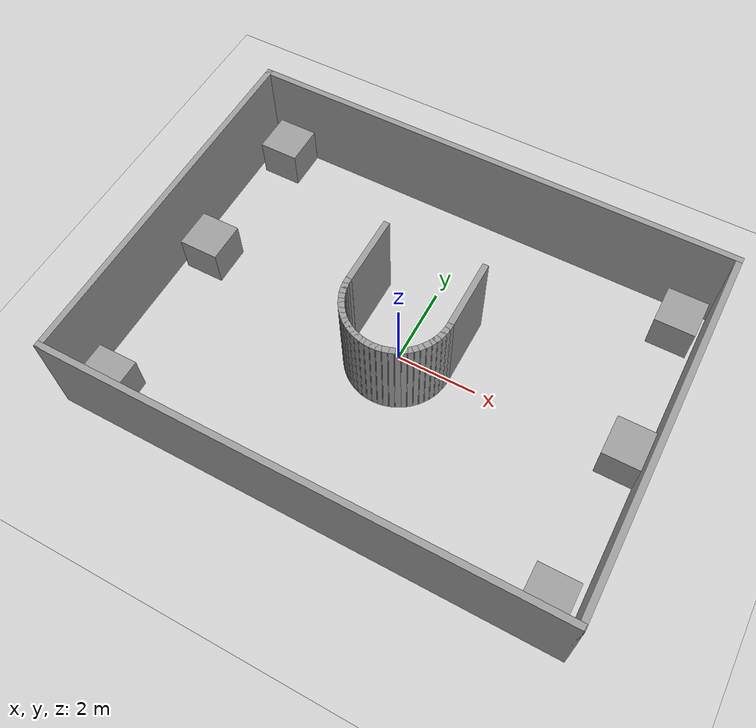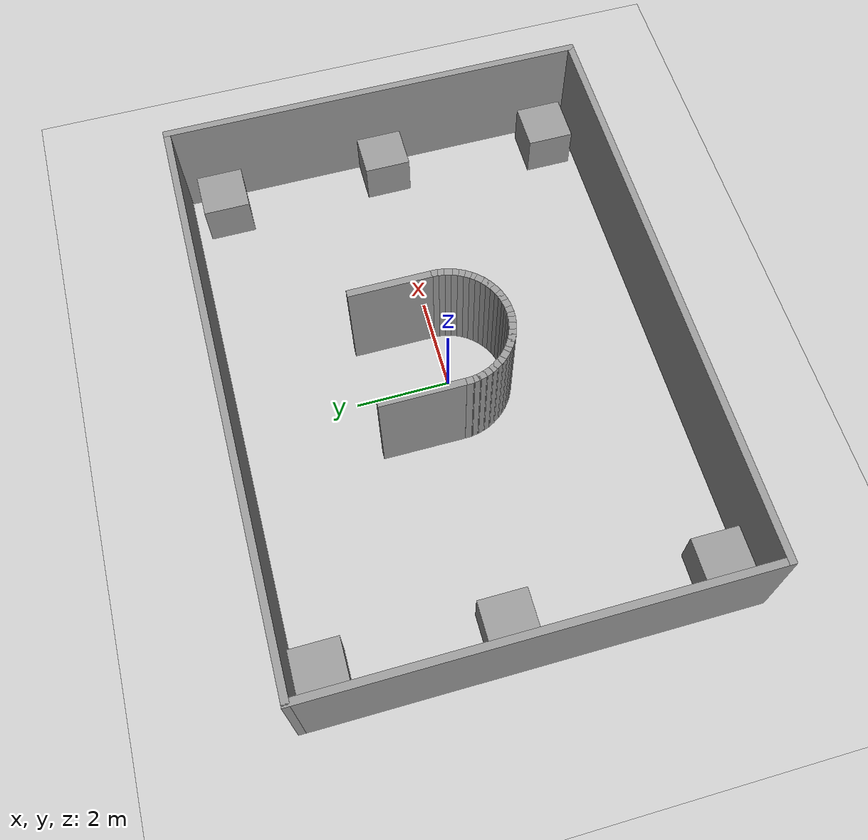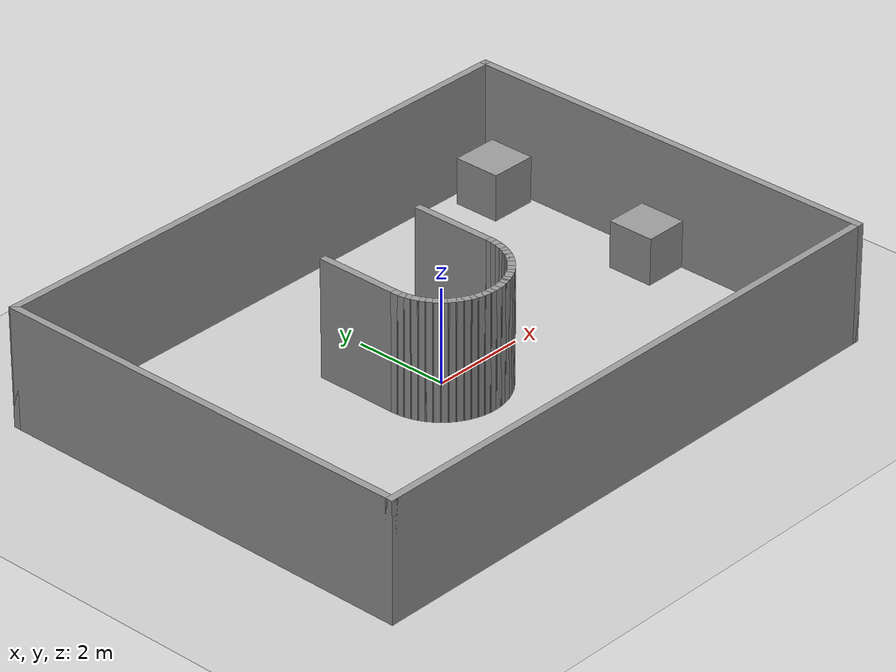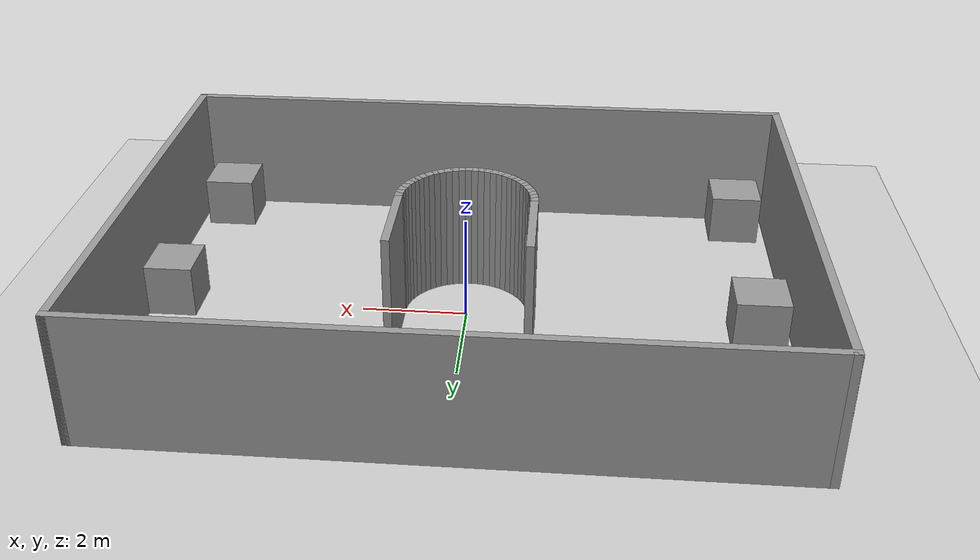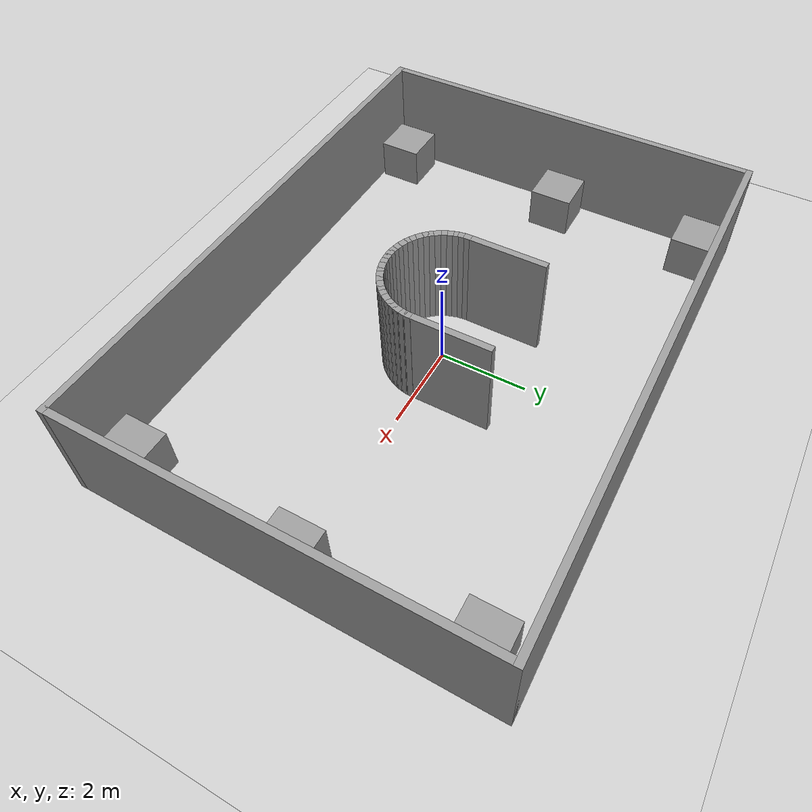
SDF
<sdf version="1.7">
 <world name="default">
  <light name="sun" type="directional">
   <pose>0 0 10 0 -0 0</pose>
   <diffuse>0.8 0.8 0.8 1</diffuse>
   <specular>0.2 0.2 0.2 1</specular>
   <attenuation>
    <range>1000</range>
    <constant>0.9</constant>
    <linear>0.01</linear>
    <quadratic>0.001</quadratic>
   </attenuation>
   <direction>-0.5 0.1 -0.9</direction>
   <spot><inner_angle>0</inner_angle><outer_angle>0</outer_angle><falloff>0</falloff></spot>
  </light>
  <model name="ground_plane">
   <static>1</static>
   <link name="link">
    <collision name="collision">
     <geometry><plane><normal>0 0 1</normal><size>100 100</size></plane></geometry>
     <surface>
      <contact><collide_bitmask>65535</collide_bitmask></contact>
      <friction><ode><mu>100</mu><mu2>50</mu2></ode></friction>
     </surface>
    </collision>
    <visual name="visual">
     <cast_shadows>0</cast_shadows>
     <geometry><plane><normal>0 0 1</normal><size>100 100</size></plane></geometry>
     <material>
      <script><uri>file://media/materials/scripts/gazebo.material</uri><name>Gazebo/Grey</name></script>
     </material>
    </visual>
   </link>
  </model>
  <gravity>0 0 -9.8</gravity>
  <magnetic_field>6e-06 2.3e-05 -4.2e-05</magnetic_field>
  <atmosphere type="adiabatic"/>
  <physics type="ode">
   <max_step_size>0.001</max_step_size>
   <real_time_factor>1</real_time_factor>
   <real_time_update_rate>1000</real_time_update_rate>
  </physics>
  <scene><ambient>0.4 0.4 0.4 1</ambient><background>0.7 0.7 0.7 1</background><shadows>1</shadows></scene>
  <spherical_coordinates>
   <surface_model>EARTH_WGS84</surface_model>
   <latitude_deg>0</latitude_deg>
   <longitude_deg>0</longitude_deg>
   <elevation>0</elevation>
   <heading_deg>0</heading_deg>
  </spherical_coordinates>
  <model name="map_extra">
   <link name="Wall_bottom">
    <collision name="Wall_bottom_Collision">
     <geometry><box><size>12.5 0.15 2.5</size></box></geometry>
     <pose>0 0 1.25 0 -0 0</pose>
    </collision>
    <visual name="Wall_bottom_Visual">
     <pose>0 0 1.25 0 -0 0</pose>
     <geometry><box><size>12.5 0.15 2.5</size></box></geometry>
     <material>
      <script><uri>file://media/materials/scripts/gazebo.material</uri><name>Gazebo/Grey</name></script>
      <ambient>1 1 1 1</ambient>
     </material>
     <meta><layer>0</layer></meta>
    </visual>
    <pose>0.000000 -4.550000 0 0 -0 0.000000</pose>
   </link>
   <link name="Wall_top">
    <collision name="Wall_top_Collision">
     <geometry><box><size>12.5 0.15 2.5</size></box></geometry>
     <pose>0 0 1.25 0 -0 0</pose>
    </collision>
    <visual name="Wall_top_Visual">
     <pose>0 0 1.25 0 -0 0</pose>
     <geometry><box><size>12.5 0.15 2.5</size></box></geometry>
     <material>
      <script><uri>file://media/materials/scripts/gazebo.material</uri><name>Gazebo/Grey</name></script>
      <ambient>1 1 1 1</ambient>
     </material>
     <meta><layer>0</layer></meta>
    </visual>
    <pose>0.000000 4.550000 0 0 -0 0.000000</pose>
   </link>
   <link name="Wall_left">
    <collision name="Wall_left_Collision">
     <geometry><box><size>9.25 0.15 2.5</size></box></geometry>
     <pose>0 0 1.25 0 -0 0</pose>
    </collision>
    <visual name="Wall_left_Visual">
     <pose>0 0 1.25 0 -0 0</pose>
     <geometry><box><size>9.25 0.15 2.5</size></box></geometry>
     <material>
      <script><uri>file://media/materials/scripts/gazebo.material</uri><name>Gazebo/Grey</name></script>
      <ambient>1 1 1 1</ambient>
     </material>
     <meta><layer>0</layer></meta>
    </visual>
    <pose>-6.175000 0.000000 0 0 -0 1.570796</pose>
   </link>
   <link name="Wall_right">
    <collision name="Wall_right_Collision">
     <geometry><box><size>9.25 0.15 2.5</size></box></geometry>
     <pose>0 0 1.25 0 -0 0</pose>
    </collision>
    <visual name="Wall_right_Visual">
     <pose>0 0 1.25 0 -0 0</pose>
     <geometry><box><size>9.25 0.15 2.5</size></box></geometry>
     <material>
      <script><uri>file://media/materials/scripts/gazebo.material</uri><name>Gazebo/Grey</name></script>
      <ambient>1 1 1 1</ambient>
     </material>
     <meta><layer>0</layer></meta>
    </visual>
    <pose>6.175000 0.000000 0 0 -0 1.570796</pose>
   </link>
   <static>1</static>
  </model>
  <model name="U_curved">
   <link name="Arc_00">
    <collision name="Arc_00_Collision">
     <geometry><box><size>0.16355 0.15 2.5</size></box></geometry>
     <pose>0 0 1.25 0 -0 0</pose>
    </collision>
    <visual name="Arc_00_Visual">
     <pose>0 0 1.25 0 -0 0</pose>
     <geometry><box><size>0.16355 0.15 2.5</size></box></geometry>
     <material>
      <script><uri>file://media/materials/scripts/gazebo.material</uri><name>Gazebo/Grey</name></script>
      <ambient>1 1 1 1</ambient>
     </material>
     <meta><layer>0</layer></meta>
    </visual>
    <pose>-1.248287 -0.065420 0 0 -0 4.764749</pose>
   </link>
   <link name="Arc_01">
    <collision name="Arc_01_Collision">
     <geometry><box><size>0.16355 0.15 2.5</size></box></geometry>
     <pose>0 0 1.25 0 -0 0</pose>
    </collision>
    <visual name="Arc_01_Visual">
     <pose>0 0 1.25 0 -0 0</pose>
     <geometry><box><size>0.16355 0.15 2.5</size></box></geometry>
     <material>
      <script><uri>file://media/materials/scripts/gazebo.material</uri><name>Gazebo/Grey</name></script>
      <ambient>1 1 1 1</ambient>
     </material>
     <meta><layer>0</layer></meta>
    </visual>
    <pose>-1.234610 -0.195543 0 0 -0 4.869469</pose>
   </link>
   <link name="Arc_02">
    <collision name="Arc_02_Collision">
     <geometry><box><size>0.16355 0.15 2.5</size></box></geometry>
     <pose>0 0 1.25 0 -0 0</pose>
    </collision>
    <visual name="Arc_02_Visual">
     <pose>0 0 1.25 0 -0 0</pose>
     <geometry><box><size>0.16355 0.15 2.5</size></box></geometry>
     <material>
      <script><uri>file://media/materials/scripts/gazebo.material</uri><name>Gazebo/Grey</name></script>
      <ambient>1 1 1 1</ambient>
     </material>
     <meta><layer>0</layer></meta>
    </visual>
    <pose>-1.207407 -0.323524 0 0 -0 4.974188</pose>
   </link>
   <link name="Arc_03">
    <collision name="Arc_03_Collision">
     <geometry><box><size>0.16355 0.15 2.5</size></box></geometry>
     <pose>0 0 1.25 0 -0 0</pose>
    </collision>
    <visual name="Arc_03_Visual">
     <pose>0 0 1.25 0 -0 0</pose>
     <geometry><box><size>0.16355 0.15 2.5</size></box></geometry>
     <material>
      <script><uri>file://media/materials/scripts/gazebo.material</uri><name>Gazebo/Grey</name></script>
      <ambient>1 1 1 1</ambient>
     </material>
     <meta><layer>0</layer></meta>
    </visual>
    <pose>-1.166976 -0.447960 0 0 -0 5.078908</pose>
   </link>
   <link name="Arc_04">
    <collision name="Arc_04_Collision">
     <geometry><box><size>0.16355 0.15 2.5</size></box></geometry>
     <pose>0 0 1.25 0 -0 0</pose>
    </collision>
    <visual name="Arc_04_Visual">
     <pose>0 0 1.25 0 -0 0</pose>
     <geometry><box><size>0.16355 0.15 2.5</size></box></geometry>
     <material>
      <script><uri>file://media/materials/scripts/gazebo.material</uri><name>Gazebo/Grey</name></script>
      <ambient>1 1 1 1</ambient>
     </material>
     <meta><layer>0</layer></meta>
    </visual>
    <pose>-1.113758 -0.567488 0 0 -0 5.183628</pose>
   </link>
   <link name="Arc_05">
    <collision name="Arc_05_Collision">
     <geometry><box><size>0.16355 0.15 2.5</size></box></geometry>
     <pose>0 0 1.25 0 -0 0</pose>
    </collision>
    <visual name="Arc_05_Visual">
     <pose>0 0 1.25 0 -0 0</pose>
     <geometry><box><size>0.16355 0.15 2.5</size></box></geometry>
     <material>
      <script><uri>file://media/materials/scripts/gazebo.material</uri><name>Gazebo/Grey</name></script>
      <ambient>1 1 1 1</ambient>
     </material>
     <meta><layer>0</layer></meta>
    </visual>
    <pose>-1.048338 -0.680799 0 0 -0 5.288348</pose>
   </link>
   <link name="Arc_06">
    <collision name="Arc_06_Collision">
     <geometry><box><size>0.16355 0.15 2.5</size></box></geometry>
     <pose>0 0 1.25 0 -0 0</pose>
    </collision>
    <visual name="Arc_06_Visual">
     <pose>0 0 1.25 0 -0 0</pose>
     <geometry><box><size>0.16355 0.15 2.5</size></box></geometry>
     <material>
      <script><uri>file://media/materials/scripts/gazebo.material</uri><name>Gazebo/Grey</name></script>
      <ambient>1 1 1 1</ambient>
     </material>
     <meta><layer>0</layer></meta>
    </visual>
    <pose>-0.971432 -0.786650 0 0 -0 5.393067</pose>
   </link>
   <link name="Arc_07">
    <collision name="Arc_07_Collision">
     <geometry><box><size>0.16355 0.15 2.5</size></box></geometry>
     <pose>0 0 1.25 0 -0 0</pose>
    </collision>
    <visual name="Arc_07_Visual">
     <pose>0 0 1.25 0 -0 0</pose>
     <geometry><box><size>0.16355 0.15 2.5</size></box></geometry>
     <material>
      <script><uri>file://media/materials/scripts/gazebo.material</uri><name>Gazebo/Grey</name></script>
      <ambient>1 1 1 1</ambient>
     </material>
     <meta><layer>0</layer></meta>
    </visual>
    <pose>-0.883883 -0.883883 0 0 -0 5.497787</pose>
   </link>
   <link name="Arc_08">
    <collision name="Arc_08_Collision">
     <geometry><box><size>0.16355 0.15 2.5</size></box></geometry>
     <pose>0 0 1.25 0 -0 0</pose>
    </collision>
    <visual name="Arc_08_Visual">
     <pose>0 0 1.25 0 -0 0</pose>
     <geometry><box><size>0.16355 0.15 2.5</size></box></geometry>
     <material>
      <script><uri>file://media/materials/scripts/gazebo.material</uri><name>Gazebo/Grey</name></script>
      <ambient>1 1 1 1</ambient>
     </material>
     <meta><layer>0</layer></meta>
    </visual>
    <pose>-0.786650 -0.971432 0 0 -0 5.602507</pose>
   </link>
   <link name="Arc_09">
    <collision name="Arc_09_Collision">
     <geometry><box><size>0.16355 0.15 2.5</size></box></geometry>
     <pose>0 0 1.25 0 -0 0</pose>
    </collision>
    <visual name="Arc_09_Visual">
     <pose>0 0 1.25 0 -0 0</pose>
     <geometry><box><size>0.16355 0.15 2.5</size></box></geometry>
     <material>
      <script><uri>file://media/materials/scripts/gazebo.material</uri><name>Gazebo/Grey</name></script>
      <ambient>1 1 1 1</ambient>
     </material>
     <meta><layer>0</layer></meta>
    </visual>
    <pose>-0.680799 -1.048338 0 0 -0 5.707227</pose>
   </link>
   <link name="Arc_10">
    <collision name="Arc_10_Collision">
     <geometry><box><size>0.16355 0.15 2.5</size></box></geometry>
     <pose>0 0 1.25 0 -0 0</pose>
    </collision>
    <visual name="Arc_10_Visual">
     <pose>0 0 1.25 0 -0 0</pose>
     <geometry><box><size>0.16355 0.15 2.5</size></box></geometry>
     <material>
      <script><uri>file://media/materials/scripts/gazebo.material</uri><name>Gazebo/Grey</name></script>
      <ambient>1 1 1 1</ambient>
     </material>
     <meta><layer>0</layer></meta>
    </visual>
    <pose>-0.567488 -1.113758 0 0 -0 5.811946</pose>
   </link>
   <link name="Arc_11">
    <collision name="Arc_11_Collision">
     <geometry><box><size>0.16355 0.15 2.5</size></box></geometry>
     <pose>0 0 1.25 0 -0 0</pose>
    </collision>
    <visual name="Arc_11_Visual">
     <pose>0 0 1.25 0 -0 0</pose>
     <geometry><box><size>0.16355 0.15 2.5</size></box></geometry>
     <material>
      <script><uri>file://media/materials/scripts/gazebo.material</uri><name>Gazebo/Grey</name></script>
      <ambient>1 1 1 1</ambient>
     </material>
     <meta><layer>0</layer></meta>
    </visual>
    <pose>-0.447960 -1.166976 0 0 -0 5.916666</pose>
   </link>
   <link name="Arc_12">
    <collision name="Arc_12_Collision">
     <geometry><box><size>0.16355 0.15 2.5</size></box></geometry>
     <pose>0 0 1.25 0 -0 0</pose>
    </collision>
    <visual name="Arc_12_Visual">
     <pose>0 0 1.25 0 -0 0</pose>
     <geometry><box><size>0.16355 0.15 2.5</size></box></geometry>
     <material>
      <script><uri>file://media/materials/scripts/gazebo.material</uri><name>Gazebo/Grey</name></script>
      <ambient>1 1 1 1</ambient>
     </material>
     <meta><layer>0</layer></meta>
    </visual>
    <pose>-0.323524 -1.207407 0 0 -0 6.021386</pose>
   </link>
   <link name="Arc_13">
    <collision name="Arc_13_Collision">
     <geometry><box><size>0.16355 0.15 2.5</size></box></geometry>
     <pose>0 0 1.25 0 -0 0</pose>
    </collision>
    <visual name="Arc_13_Visual">
     <pose>0 0 1.25 0 -0 0</pose>
     <geometry><box><size>0.16355 0.15 2.5</size></box></geometry>
     <material>
      <script><uri>file://media/materials/scripts/gazebo.material</uri><name>Gazebo/Grey</name></script>
      <ambient>1 1 1 1</ambient>
     </material>
     <meta><layer>0</layer></meta>
    </visual>
    <pose>-0.195543 -1.234610 0 0 -0 6.126106</pose>
   </link>
   <link name="Arc_14">
    <collision name="Arc_14_Collision">
     <geometry><box><size>0.16355 0.15 2.5</size></box></geometry>
     <pose>0 0 1.25 0 -0 0</pose>
    </collision>
    <visual name="Arc_14_Visual">
     <pose>0 0 1.25 0 -0 0</pose>
     <geometry><box><size>0.16355 0.15 2.5</size></box></geometry>
     <material>
      <script><uri>file://media/materials/scripts/gazebo.material</uri><name>Gazebo/Grey</name></script>
      <ambient>1 1 1 1</ambient>
     </material>
     <meta><layer>0</layer></meta>
    </visual>
    <pose>-0.065420 -1.248287 0 0 -0 6.230825</pose>
   </link>
   <link name="Arc_15">
    <collision name="Arc_15_Collision">
     <geometry><box><size>0.16355 0.15 2.5</size></box></geometry>
     <pose>0 0 1.25 0 -0 0</pose>
    </collision>
    <visual name="Arc_15_Visual">
     <pose>0 0 1.25 0 -0 0</pose>
     <geometry><box><size>0.16355 0.15 2.5</size></box></geometry>
     <material>
      <script><uri>file://media/materials/scripts/gazebo.material</uri><name>Gazebo/Grey</name></script>
      <ambient>1 1 1 1</ambient>
     </material>
     <meta><layer>0</layer></meta>
    </visual>
    <pose>0.065420 -1.248287 0 0 -0 6.335545</pose>
   </link>
   <link name="Arc_16">
    <collision name="Arc_16_Collision">
     <geometry><box><size>0.16355 0.15 2.5</size></box></geometry>
     <pose>0 0 1.25 0 -0 0</pose>
    </collision>
    <visual name="Arc_16_Visual">
     <pose>0 0 1.25 0 -0 0</pose>
     <geometry><box><size>0.16355 0.15 2.5</size></box></geometry>
     <material>
      <script><uri>file://media/materials/scripts/gazebo.material</uri><name>Gazebo/Grey</name></script>
      <ambient>1 1 1 1</ambient>
     </material>
     <meta><layer>0</layer></meta>
    </visual>
    <pose>0.195543 -1.234610 0 0 -0 6.440265</pose>
   </link>
   <link name="Arc_17">
    <collision name="Arc_17_Collision">
     <geometry><box><size>0.16355 0.15 2.5</size></box></geometry>
     <pose>0 0 1.25 0 -0 0</pose>
    </collision>
    <visual name="Arc_17_Visual">
     <pose>0 0 1.25 0 -0 0</pose>
     <geometry><box><size>0.16355 0.15 2.5</size></box></geometry>
     <material>
      <script><uri>file://media/materials/scripts/gazebo.material</uri><name>Gazebo/Grey</name></script>
      <ambient>1 1 1 1</ambient>
     </material>
     <meta><layer>0</layer></meta>
    </visual>
    <pose>0.323524 -1.207407 0 0 -0 6.544985</pose>
   </link>
   <link name="Arc_18">
    <collision name="Arc_18_Collision">
     <geometry><box><size>0.16355 0.15 2.5</size></box></geometry>
     <pose>0 0 1.25 0 -0 0</pose>
    </collision>
    <visual name="Arc_18_Visual">
     <pose>0 0 1.25 0 -0 0</pose>
     <geometry><box><size>0.16355 0.15 2.5</size></box></geometry>
     <material>
      <script><uri>file://media/materials/scripts/gazebo.material</uri><name>Gazebo/Grey</name></script>
      <ambient>1 1 1 1</ambient>
     </material>
     <meta><layer>0</layer></meta>
    </visual>
    <pose>0.447960 -1.166976 0 0 -0 6.649704</pose>
   </link>
   <link name="Arc_19">
    <collision name="Arc_19_Collision">
     <geometry><box><size>0.16355 0.15 2.5</size></box></geometry>
     <pose>0 0 1.25 0 -0 0</pose>
    </collision>
    <visual name="Arc_19_Visual">
     <pose>0 0 1.25 0 -0 0</pose>
     <geometry><box><size>0.16355 0.15 2.5</size></box></geometry>
     <material>
      <script><uri>file://media/materials/scripts/gazebo.material</uri><name>Gazebo/Grey</name></script>
      <ambient>1 1 1 1</ambient>
     </material>
     <meta><layer>0</layer></meta>
    </visual>
    <pose>0.567488 -1.113758 0 0 -0 6.754424</pose>
   </link>
   <link name="Arc_20">
    <collision name="Arc_20_Collision">
     <geometry><box><size>0.16355 0.15 2.5</size></box></geometry>
     <pose>0 0 1.25 0 -0 0</pose>
    </collision>
    <visual name="Arc_20_Visual">
     <pose>0 0 1.25 0 -0 0</pose>
     <geometry><box><size>0.16355 0.15 2.5</size></box></geometry>
     <material>
      <script><uri>file://media/materials/scripts/gazebo.material</uri><name>Gazebo/Grey</name></script>
      <ambient>1 1 1 1</ambient>
     </material>
     <meta><layer>0</layer></meta>
    </visual>
    <pose>0.680799 -1.048338 0 0 -0 6.859144</pose>
   </link>
   <link name="Arc_21">
    <collision name="Arc_21_Collision">
     <geometry><box><size>0.16355 0.15 2.5</size></box></geometry>
     <pose>0 0 1.25 0 -0 0</pose>
    </collision>
    <visual name="Arc_21_Visual">
     <pose>0 0 1.25 0 -0 0</pose>
     <geometry><box><size>0.16355 0.15 2.5</size></box></geometry>
     <material>
      <script><uri>file://media/materials/scripts/gazebo.material</uri><name>Gazebo/Grey</name></script>
      <ambient>1 1 1 1</ambient>
     </material>
     <meta><layer>0</layer></meta>
    </visual>
    <pose>0.786650 -0.971432 0 0 -0 6.963864</pose>
   </link>
   <link name="Arc_22">
    <collision name="Arc_22_Collision">
     <geometry><box><size>0.16355 0.15 2.5</size></box></geometry>
     <pose>0 0 1.25 0 -0 0</pose>
    </collision>
    <visual name="Arc_22_Visual">
     <pose>0 0 1.25 0 -0 0</pose>
     <geometry><box><size>0.16355 0.15 2.5</size></box></geometry>
     <material>
      <script><uri>file://media/materials/scripts/gazebo.material</uri><name>Gazebo/Grey</name></script>
      <ambient>1 1 1 1</ambient>
     </material>
     <meta><layer>0</layer></meta>
    </visual>
    <pose>0.883883 -0.883883 0 0 -0 7.068583</pose>
   </link>
   <link name="Arc_23">
    <collision name="Arc_23_Collision">
     <geometry><box><size>0.16355 0.15 2.5</size></box></geometry>
     <pose>0 0 1.25 0 -0 0</pose>
    </collision>
    <visual name="Arc_23_Visual">
     <pose>0 0 1.25 0 -0 0</pose>
     <geometry><box><size>0.16355 0.15 2.5</size></box></geometry>
     <material>
      <script><uri>file://media/materials/scripts/gazebo.material</uri><name>Gazebo/Grey</name></script>
      <ambient>1 1 1 1</ambient>
     </material>
     <meta><layer>0</layer></meta>
    </visual>
    <pose>0.971432 -0.786650 0 0 -0 7.173303</pose>
   </link>
   <link name="Arc_24">
    <collision name="Arc_24_Collision">
     <geometry><box><size>0.16355 0.15 2.5</size></box></geometry>
     <pose>0 0 1.25 0 -0 0</pose>
    </collision>
    <visual name="Arc_24_Visual">
     <pose>0 0 1.25 0 -0 0</pose>
     <geometry><box><size>0.16355 0.15 2.5</size></box></geometry>
     <material>
      <script><uri>file://media/materials/scripts/gazebo.material</uri><name>Gazebo/Grey</name></script>
      <ambient>1 1 1 1</ambient>
     </material>
     <meta><layer>0</layer></meta>
    </visual>
    <pose>1.048338 -0.680799 0 0 -0 7.278023</pose>
   </link>
   <link name="Arc_25">
    <collision name="Arc_25_Collision">
     <geometry><box><size>0.16355 0.15 2.5</size></box></geometry>
     <pose>0 0 1.25 0 -0 0</pose>
    </collision>
    <visual name="Arc_25_Visual">
     <pose>0 0 1.25 0 -0 0</pose>
     <geometry><box><size>0.16355 0.15 2.5</size></box></geometry>
     <material>
      <script><uri>file://media/materials/scripts/gazebo.material</uri><name>Gazebo/Grey</name></script>
      <ambient>1 1 1 1</ambient>
     </material>
     <meta><layer>0</layer></meta>
    </visual>
    <pose>1.113758 -0.567488 0 0 -0 7.382743</pose>
   </link>
   <link name="Arc_26">
    <collision name="Arc_26_Collision">
     <geometry><box><size>0.16355 0.15 2.5</size></box></geometry>
     <pose>0 0 1.25 0 -0 0</pose>
    </collision>
    <visual name="Arc_26_Visual">
     <pose>0 0 1.25 0 -0 0</pose>
     <geometry><box><size>0.16355 0.15 2.5</size></box></geometry>
     <material>
      <script><uri>file://media/materials/scripts/gazebo.material</uri><name>Gazebo/Grey</name></script>
      <ambient>1 1 1 1</ambient>
     </material>
     <meta><layer>0</layer></meta>
    </visual>
    <pose>1.166976 -0.447960 0 0 -0 7.487462</pose>
   </link>
   <link name="Arc_27">
    <collision name="Arc_27_Collision">
     <geometry><box><size>0.16355 0.15 2.5</size></box></geometry>
     <pose>0 0 1.25 0 -0 0</pose>
    </collision>
    <visual name="Arc_27_Visual">
     <pose>0 0 1.25 0 -0 0</pose>
     <geometry><box><size>0.16355 0.15 2.5</size></box></geometry>
     <material>
      <script><uri>file://media/materials/scripts/gazebo.material</uri><name>Gazebo/Grey</name></script>
      <ambient>1 1 1 1</ambient>
     </material>
     <meta><layer>0</layer></meta>
    </visual>
    <pose>1.207407 -0.323524 0 0 -0 7.592182</pose>
   </link>
   <link name="Arc_28">
    <collision name="Arc_28_Collision">
     <geometry><box><size>0.16355 0.15 2.5</size></box></geometry>
     <pose>0 0 1.25 0 -0 0</pose>
    </collision>
    <visual name="Arc_28_Visual">
     <pose>0 0 1.25 0 -0 0</pose>
     <geometry><box><size>0.16355 0.15 2.5</size></box></geometry>
     <material>
      <script><uri>file://media/materials/scripts/gazebo.material</uri><name>Gazebo/Grey</name></script>
      <ambient>1 1 1 1</ambient>
     </material>
     <meta><layer>0</layer></meta>
    </visual>
    <pose>1.234610 -0.195543 0 0 -0 7.696902</pose>
   </link>
   <link name="Arc_29">
    <collision name="Arc_29_Collision">
     <geometry><box><size>0.16355 0.15 2.5</size></box></geometry>
     <pose>0 0 1.25 0 -0 0</pose>
    </collision>
    <visual name="Arc_29_Visual">
     <pose>0 0 1.25 0 -0 0</pose>
     <geometry><box><size>0.16355 0.15 2.5</size></box></geometry>
     <material>
      <script><uri>file://media/materials/scripts/gazebo.material</uri><name>Gazebo/Grey</name></script>
      <ambient>1 1 1 1</ambient>
     </material>
     <meta><layer>0</layer></meta>
    </visual>
    <pose>1.248287 -0.065420 0 0 -0 7.801622</pose>
   </link>
   <link name="Arm_left">
    <collision name="Arm_left_Collision">
     <geometry><box><size>1.75 0.15 2.5</size></box></geometry>
     <pose>0 0 1.25 0 -0 0</pose>
    </collision>
    <visual name="Arm_left_Visual">
     <pose>0 0 1.25 0 -0 0</pose>
     <geometry><box><size>1.75 0.15 2.5</size></box></geometry>
     <material>
      <script><uri>file://media/materials/scripts/gazebo.material</uri><name>Gazebo/Grey</name></script>
      <ambient>1 1 1 1</ambient>
     </material>
     <meta><layer>0</layer></meta>
    </visual>
    <pose>-1.250000 0.875000 0 0 -0 1.570796</pose>
   </link>
   <link name="Arm_right">
    <collision name="Arm_right_Collision">
     <geometry><box><size>1.75 0.15 2.5</size></box></geometry>
     <pose>0 0 1.25 0 -0 0</pose>
    </collision>
    <visual name="Arm_right_Visual">
     <pose>0 0 1.25 0 -0 0</pose>
     <geometry><box><size>1.75 0.15 2.5</size></box></geometry>
     <material>
      <script><uri>file://media/materials/scripts/gazebo.material</uri><name>Gazebo/Grey</name></script>
      <ambient>1 1 1 1</ambient>
     </material>
     <meta><layer>0</layer></meta>
    </visual>
    <pose>1.250000 0.875000 0 0 -0 1.570796</pose>
   </link>
   <static>1</static>
  </model>
  <model name="unit_box">
   <pose>-5.413790 3.950040 0.5 0 -0 0</pose>
   <link name="link">
    <inertial>
     <mass>1</mass>
     <inertia>
      <ixx>0.166667</ixx>
      <ixy>0</ixy>
      <ixz>0</ixz>
      <iyy>0.166667</iyy>
      <iyz>0</iyz>
      <izz>0.166667</izz>
     </inertia>
    </inertial>
    <collision name="collision"><geometry><box><size>1 1 1</size></box></geometry></collision>
    <visual name="visual">
     <geometry><box><size>1 1 1</size></box></geometry>
     <material>
      <script><name>Gazebo/Grey</name><uri>file://media/materials/scripts/gazebo.material</uri></script>
     </material>
    </visual>
   </link>
  </model>
  <model name="unit_box_0">
   <pose>-5.415830 -3.922110 0.5 0 -0 0</pose>
   <link name="link">
    <inertial>
     <mass>1</mass>
     <inertia>
      <ixx>0.166667</ixx>
      <ixy>0</ixy>
      <ixz>0</ixz>
      <iyy>0.166667</iyy>
      <iyz>0</iyz>
      <izz>0.166667</izz>
     </inertia>
    </inertial>
    <collision name="collision"><geometry><box><size>1 1 1</size></box></geometry></collision>
    <visual name="visual">
     <geometry><box><size>1 1 1</size></box></geometry>
     <material>
      <script><name>Gazebo/Grey</name><uri>file://media/materials/scripts/gazebo.material</uri></script>
     </material>
    </visual>
   </link>
  </model>
  <model name="unit_box_1">
   <pose>5.440790 -3.815840 0.5 0 -0 0</pose>
   <link name="link">
    <inertial>
     <mass>1</mass>
     <inertia>
      <ixx>0.166667</ixx>
      <ixy>0</ixy>
      <ixz>0</ixz>
      <iyy>0.166667</iyy>
      <iyz>0</iyz>
      <izz>0.166667</izz>
     </inertia>
    </inertial>
    <collision name="collision"><geometry><box><size>1 1 1</size></box></geometry></collision>
    <visual name="visual">
     <geometry><box><size>1 1 1</size></box></geometry>
     <material>
      <script><name>Gazebo/Grey</name><uri>file://media/materials/scripts/gazebo.material</uri></script>
     </material>
    </visual>
   </link>
  </model>
  <model name="unit_box_2">
   <pose>5.510420 3.710290 0.5 0 -0 0</pose>
   <link name="link">
    <inertial>
     <mass>1</mass>
     <inertia>
      <ixx>0.166667</ixx>
      <ixy>0</ixy>
      <ixz>0</ixz>
      <iyy>0.166667</iyy>
      <iyz>0</iyz>
      <izz>0.166667</izz>
     </inertia>
    </inertial>
    <collision name="collision"><geometry><box><size>1 1 1</size></box></geometry></collision>
    <visual name="visual">
     <geometry><box><size>1 1 1</size></box></geometry>
     <material>
      <script><name>Gazebo/Grey</name><uri>file://media/materials/scripts/gazebo.material</uri></script>
     </material>
    </visual>
   </link>
  </model>
  <model name="unit_box_3">
   <pose>-5.468720 0.352780 0.5 0 -0 0</pose>
   <link name="link">
    <inertial>
     <mass>1</mass>
     <inertia>
      <ixx>0.166667</ixx>
      <ixy>0</ixy>
      <ixz>0</ixz>
      <iyy>0.166667</iyy>
      <iyz>0</iyz>
      <izz>0.166667</izz>
     </inertia>
    </inertial>
    <collision name="collision"><geometry><box><size>1 1 1</size></box></geometry></collision>
    <visual name="visual">
     <geometry><box><size>1 1 1</size></box></geometry>
     <material>
      <script><name>Gazebo/Grey</name><uri>file://media/materials/scripts/gazebo.material</uri></script>
     </material>
    </visual>
   </link>
  </model>
  <model name="unit_box_4">
   <pose>5.682150 -0.012164 0.5 0 -0 0</pose>
   <link name="link">
    <inertial>
     <mass>1</mass>
     <inertia>
      <ixx>0.166667</ixx>
      <ixy>0</ixy>
      <ixz>0</ixz>
      <iyy>0.166667</iyy>
      <iyz>0</iyz>
      <izz>0.166667</izz>
     </inertia>
    </inertial>
    <collision name="collision"><geometry><box><size>1 1 1</size></box></geometry></collision>
    <visual name="visual">
     <geometry><box><size>1 1 1</size></box></geometry>
     <material>
      <script><name>Gazebo/Grey</name><uri>file://media/materials/scripts/gazebo.material</uri></script>
     </material>
    </visual>
   </link>
  </model>
 </world>
</sdf>
